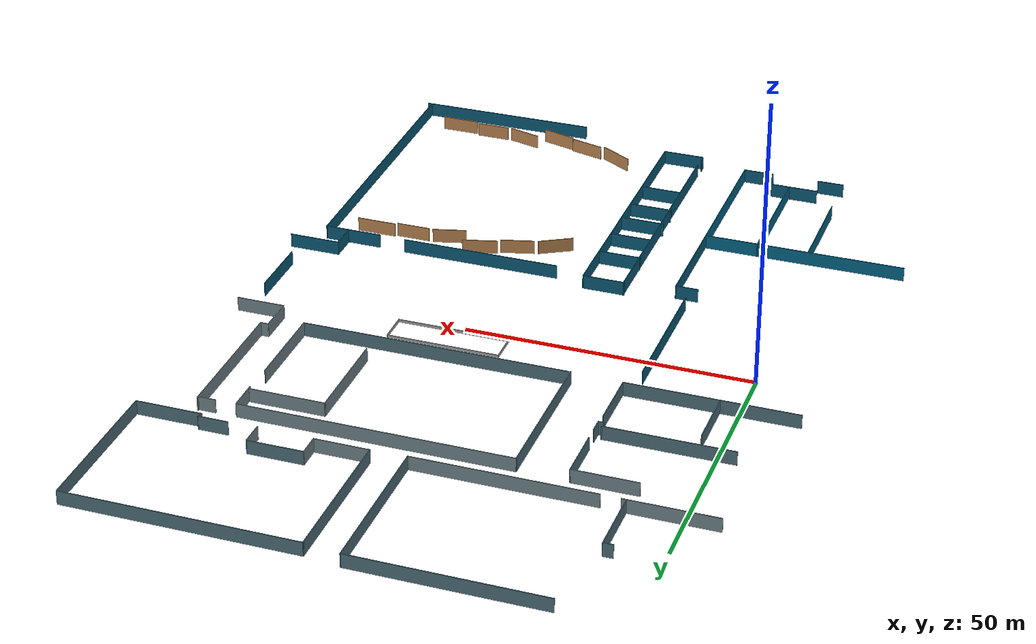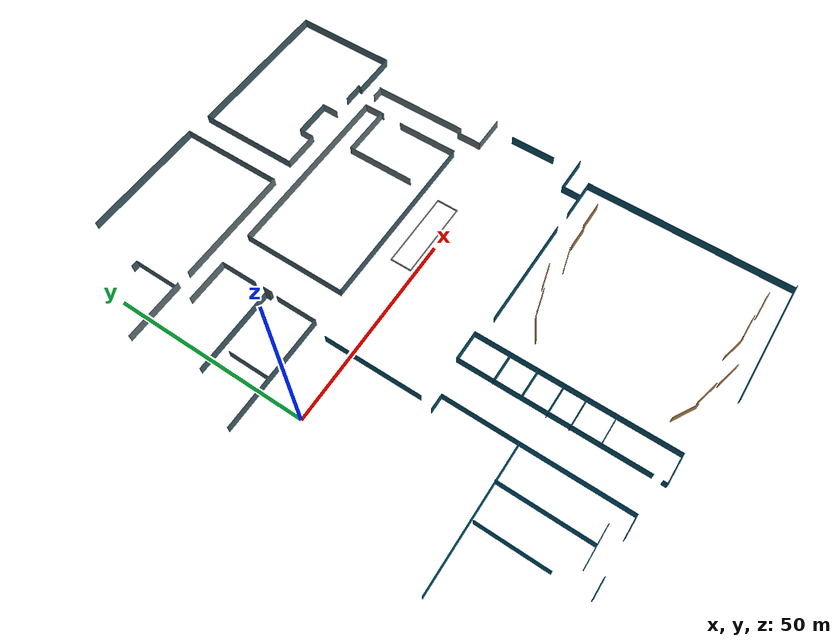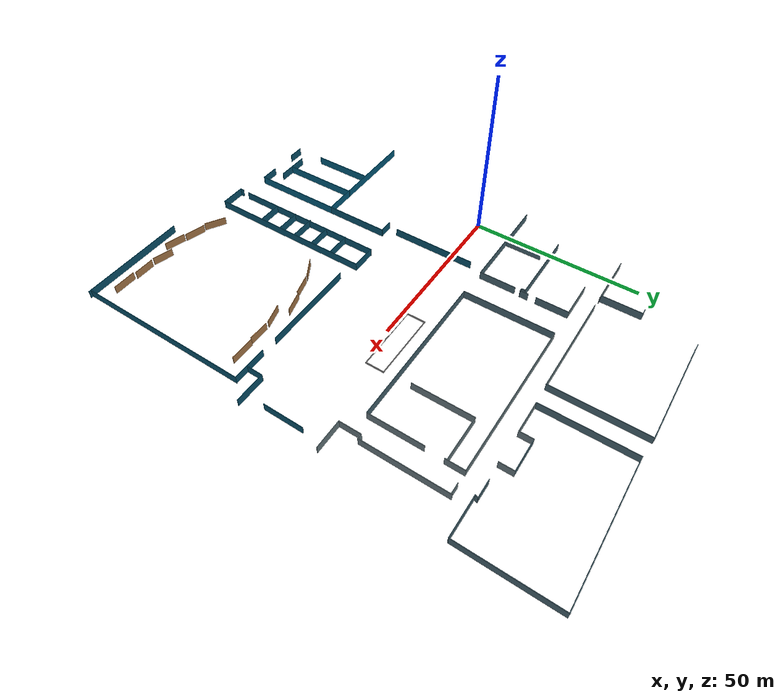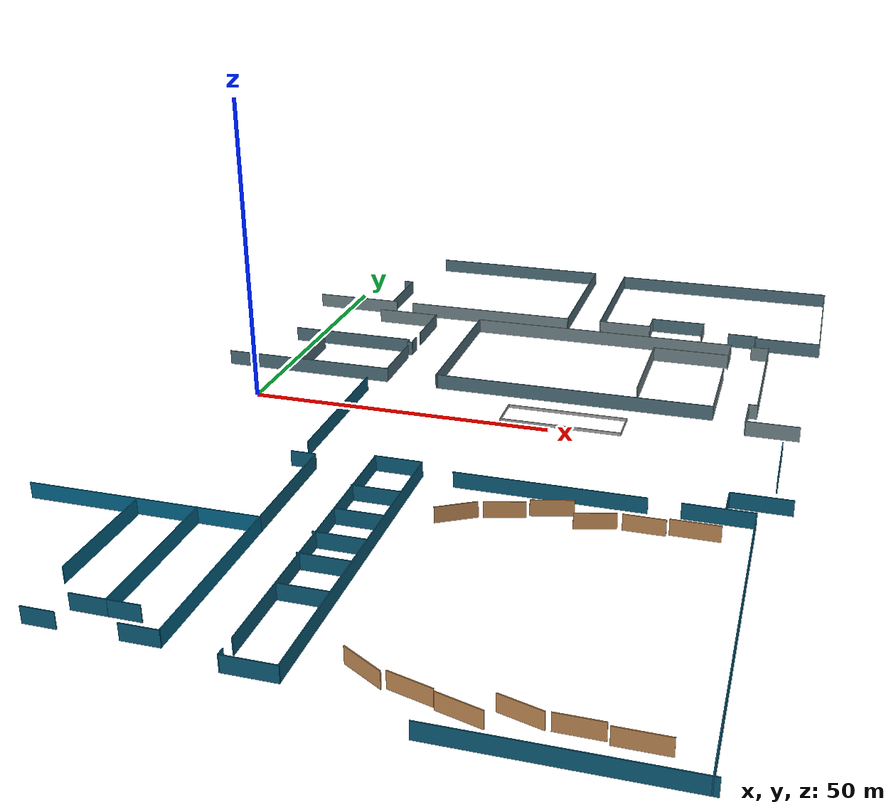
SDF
<sdf version="1.6">
 <model name="eceb">
  <pose>2.10284 -4.41124 0 0 -0 0</pose>
  <link name="Wall_116">
   <collision name="Wall_116_Collision">
    <geometry><box><size>11.25 0.15 2.5</size></box></geometry>
    <pose>0 0 1.25 0 -0 0</pose>
   </collision>
   <visual name="Wall_116_Visual">
    <pose>0 0 1.25 0 -0 0</pose>
    <geometry><box><size>11.25 0.15 2.5</size></box></geometry>
    <material>
     <script><uri>file://media/materials/scripts/gazebo.material</uri><name>Gazebo/Grey</name></script>
     <ambient>0.411765 0.486275 0.509804 1</ambient>
    </material>
    <meta><layer>0</layer></meta>
   </visual>
   <pose>11.784 41.6234 0 0 -0 0</pose>
  </link>
  <link name="Wall_117">
   <collision name="Wall_117_Collision">
    <geometry><box><size>9.5 0.15 2.5</size></box></geometry>
    <pose>0 0 1.25 0 -0 0</pose>
   </collision>
   <visual name="Wall_117_Visual">
    <pose>0 0 1.25 0 -0 0</pose>
    <geometry><box><size>9.5 0.15 2.5</size></box></geometry>
    <material>
     <script><uri>file://media/materials/scripts/gazebo.material</uri><name>Gazebo/Grey</name></script>
     <ambient>0.282353 0.403922 0.447059 1</ambient>
    </material>
    <meta><layer>0</layer></meta>
   </visual>
   <pose>17.334 36.9484 0 0 -0 -1.5708</pose>
  </link>
  <link name="Wall_119">
   <collision name="Wall_119_Collision">
    <geometry><box><size>2.5 0.15 2.5</size></box></geometry>
    <pose>0 0 1.25 0 -0 0</pose>
   </collision>
   <visual name="Wall_119_Visual">
    <pose>0 0 1.25 0 -0 0</pose>
    <geometry><box><size>2.5 0.15 2.5</size></box></geometry>
    <material>
     <script><uri>file://media/materials/scripts/gazebo.material</uri><name>Gazebo/Grey</name></script>
     <ambient>0.282353 0.403922 0.447059 1</ambient>
    </material>
    <meta><layer>0</layer></meta>
   </visual>
   <pose>17.3382 28.6905 0 0 -0 -1.5708</pose>
  </link>
  <link name="Wall_121">
   <collision name="Wall_121_Collision">
    <geometry><box><size>1 0.15 2.5</size></box></geometry>
    <pose>0 0 1.25 0 -0 0</pose>
   </collision>
   <visual name="Wall_121_Visual">
    <pose>0 0 1.25 0 -0 0</pose>
    <geometry><box><size>1 0.15 2.5</size></box></geometry>
    <material>
     <script><uri>file://media/materials/scripts/gazebo.material</uri><name>Gazebo/Grey</name></script>
     <ambient>0.282353 0.403922 0.447059 1</ambient>
    </material>
    <meta><layer>0</layer></meta>
   </visual>
   <pose>16.9132 27.5155 0 0 -0 3.14159</pose>
  </link>
  <link name="Wall_122">
   <collision name="Wall_122_Collision">
    <geometry><box><size>1.25 0.15 2.5</size></box></geometry>
    <pose>0 0 1.25 0 -0 0</pose>
   </collision>
   <visual name="Wall_122_Visual">
    <pose>0 0 1.25 0 -0 0</pose>
    <geometry><box><size>1.25 0.15 2.5</size></box></geometry>
    <material>
     <script><uri>file://media/materials/scripts/gazebo.material</uri><name>Gazebo/Grey</name></script>
     <ambient>0.282353 0.403922 0.447059 1</ambient>
    </material>
    <meta><layer>0</layer></meta>
   </visual>
   <pose>16.4882 28.0655 0 0 -0 1.5708</pose>
  </link>
  <link name="Wall_123">
   <collision name="Wall_123_Collision">
    <geometry><box><size>22 0.15 2.5</size></box></geometry>
    <pose>0 0 1.25 0 -0 0</pose>
   </collision>
   <visual name="Wall_123_Visual">
    <pose>0 0 1.25 0 -0 0</pose>
    <geometry><box><size>22 0.15 2.5</size></box></geometry>
    <material>
     <script><uri>file://media/materials/scripts/gazebo.material</uri><name>Gazebo/Grey</name></script>
     <ambient>0.282353 0.403922 0.447059 1</ambient>
    </material>
    <meta><layer>0</layer></meta>
   </visual>
   <pose>5.5632 28.6155 0 0 -0 3.14159</pose>
  </link>
  <link name="Wall_126">
   <collision name="Wall_126_Collision">
    <geometry><box><size>10.75 0.15 2.5</size></box></geometry>
    <pose>0 0 1.25 0 -0 0</pose>
   </collision>
   <visual name="Wall_126_Visual">
    <pose>0 0 1.25 0 -0 0</pose>
    <geometry><box><size>10.75 0.15 2.5</size></box></geometry>
    <material>
     <script><uri>file://media/materials/scripts/gazebo.material</uri><name>Gazebo/Grey</name></script>
     <ambient>0.282353 0.403922 0.447059 1</ambient>
    </material>
    <meta><layer>0</layer></meta>
   </visual>
   <pose>17.1199 20.5308 0 0 -0 -1.5708</pose>
  </link>
  <link name="Wall_127">
   <collision name="Wall_127_Collision">
    <geometry><box><size>29.5 0.15 2.5</size></box></geometry>
    <pose>0 0 1.25 0 -0 0</pose>
   </collision>
   <visual name="Wall_127_Visual">
    <pose>0 0 1.25 0 -0 0</pose>
    <geometry><box><size>29.5 0.15 2.5</size></box></geometry>
    <material>
     <script><uri>file://media/materials/scripts/gazebo.material</uri><name>Gazebo/Grey</name></script>
     <ambient>0.282353 0.403922 0.447059 1</ambient>
    </material>
    <meta><layer>0</layer></meta>
   </visual>
   <pose>2.44485 15.2308 0 0 -0 3.14159</pose>
  </link>
  <link name="Wall_129">
   <collision name="Wall_129_Collision">
    <geometry><box><size>10.75 0.15 2.5</size></box></geometry>
    <pose>0 0 1.25 0 -0 0</pose>
   </collision>
   <visual name="Wall_129_Visual">
    <pose>0 0 1.25 0 -0 0</pose>
    <geometry><box><size>10.75 0.15 2.5</size></box></geometry>
    <material>
     <script><uri>file://media/materials/scripts/gazebo.material</uri><name>Gazebo/Grey</name></script>
     <ambient>0.282353 0.403922 0.447059 1</ambient>
    </material>
    <meta><layer>0</layer></meta>
   </visual>
   <pose>1.04463 20.6982 0 0 -0 -1.5708</pose>
  </link>
  <link name="Wall_151">
   <collision name="Wall_151_Collision">
    <geometry><box><size>32.09 0.15 2.5</size></box></geometry>
    <pose>0 0 1.25 0 -0 0</pose>
   </collision>
   <visual name="Wall_151_Visual">
    <pose>0 0 1.25 0 -0 0</pose>
    <geometry><box><size>32.09 0.15 2.5</size></box></geometry>
    <material>
     <script><uri>file://media/materials/scripts/gazebo.material</uri><name>Gazebo/Grey</name></script>
     <ambient>0.0313726 0.333333 0.443137 1</ambient>
    </material>
    <meta><layer>0</layer></meta>
   </visual>
   <pose>66.8099 -69.7617 0 0 -0 -3.13376</pose>
  </link>
  <link name="Wall_178">
   <collision name="Wall_178_Collision">
    <geometry><box><size>35.5 0.15 2.5</size></box></geometry>
    <pose>0 0 1.25 0 -0 0</pose>
   </collision>
   <visual name="Wall_178_Visual">
    <pose>0 0 1.25 0 -0 0</pose>
    <geometry><box><size>35.5 0.15 2.5</size></box></geometry>
    <material>
     <script><uri>file://media/materials/scripts/gazebo.material</uri><name>Gazebo/Grey</name></script>
     <ambient>0.00784314 0.372549 0.505882 1</ambient>
    </material>
    <meta><layer>0</layer></meta>
   </visual>
   <pose>0.112491 -36.169 0 0 -0 0</pose>
  </link>
  <link name="Wall_188">
   <collision name="Wall_188_Collision">
    <geometry><box><size>23 0.15 2.5</size></box></geometry>
    <pose>0 0 1.25 0 -0 0</pose>
   </collision>
   <visual name="Wall_188_Visual">
    <pose>0 0 1.25 0 -0 0</pose>
    <geometry><box><size>23 0.15 2.5</size></box></geometry>
    <material>
     <script><uri>file://media/materials/scripts/gazebo.material</uri><name>Gazebo/Grey</name></script>
     <ambient>0.00784314 0.372549 0.505882 1</ambient>
    </material>
    <meta><layer>0</layer></meta>
   </visual>
   <pose>8.45793 -47.4702 0 0 -0 -1.5708</pose>
  </link>
  <link name="Wall_189">
   <collision name="Wall_189_Collision">
    <geometry><box><size>5.25 0.15 2.5</size></box></geometry>
    <pose>0 0 1.25 0 -0 0</pose>
   </collision>
   <visual name="Wall_189_Visual">
    <pose>0 0 1.25 0 -0 0</pose>
    <geometry><box><size>5.25 0.15 2.5</size></box></geometry>
    <material>
     <script><uri>file://media/materials/scripts/gazebo.material</uri><name>Gazebo/Grey</name></script>
     <ambient>0.0313726 0.333333 0.443137 1</ambient>
    </material>
    <meta><layer>0</layer></meta>
   </visual>
   <pose>5.90793 -58.8952 0 0 -0 3.14159</pose>
  </link>
  <link name="Wall_19">
   <collision name="Wall_19_Collision">
    <geometry><box><size>15.75 0.15 2.5</size></box></geometry>
    <pose>0 0 1.25 0 -0 0</pose>
   </collision>
   <visual name="Wall_19_Visual">
    <pose>0 0 1.25 0 -0 0</pose>
    <geometry><box><size>15.75 0.15 2.5</size></box></geometry>
    <material>
     <script><uri>file://media/materials/scripts/gazebo.material</uri><name>Gazebo/Grey</name></script>
     <ambient>0.411765 0.486275 0.509804 1</ambient>
    </material>
    <meta><layer>0</layer></meta>
   </visual>
   <pose>-0.148732 46.5125 0 0 -0 0</pose>
  </link>
  <link name="Wall_191">
   <collision name="Wall_191_Collision">
    <geometry><box><size>4.75 0.15 2.5</size></box></geometry>
    <pose>0 0 1.25 0 -0 0</pose>
   </collision>
   <visual name="Wall_191_Visual">
    <pose>0 0 1.25 0 -0 0</pose>
    <geometry><box><size>4.75 0.15 2.5</size></box></geometry>
    <material>
     <script><uri>file://media/materials/scripts/gazebo.material</uri><name>Gazebo/Grey</name></script>
     <ambient>0.0313726 0.333333 0.443137 1</ambient>
    </material>
    <meta><layer>0</layer></meta>
   </visual>
   <pose>10.7679 -58.8952 0 0 -0 3.14159</pose>
  </link>
  <link name="Wall_193">
   <collision name="Wall_193_Collision">
    <geometry><box><size>4.75 0.15 2.5</size></box></geometry>
    <pose>0 0 1.25 0 -0 0</pose>
   </collision>
   <visual name="Wall_193_Visual">
    <pose>0 0 1.25 0 -0 0</pose>
    <geometry><box><size>4.75 0.15 2.5</size></box></geometry>
    <material>
     <script><uri>file://media/materials/scripts/gazebo.material</uri><name>Gazebo/Grey</name></script>
     <ambient>0.0313726 0.333333 0.443137 1</ambient>
    </material>
    <meta><layer>0</layer></meta>
   </visual>
   <pose>1.65317 -62.8733 0 0 -0 3.14159</pose>
  </link>
  <link name="Wall_199">
   <collision name="Wall_199_Collision">
    <geometry><box><size>17.5 0.15 2.5</size></box></geometry>
    <pose>0 0 1.25 0 -0 0</pose>
   </collision>
   <visual name="Wall_199_Visual">
    <pose>0 0 1.25 0 -0 0</pose>
    <geometry><box><size>17.5 0.15 2.5</size></box></geometry>
    <material>
     <script><uri>file://media/materials/scripts/gazebo.material</uri><name>Gazebo/Grey</name></script>
     <ambient>0.00784314 0.372549 0.505882 1</ambient>
    </material>
    <meta><layer>0</layer></meta>
   </visual>
   <pose>-0.646828 -45.3483 0 0 -0 1.5708</pose>
  </link>
  <link name="Wall_201">
   <collision name="Wall_201_Collision">
    <geometry><box><size>26.75 0.15 2.5</size></box></geometry>
    <pose>0 0 1.25 0 -0 0</pose>
   </collision>
   <visual name="Wall_201_Visual">
    <pose>0 0 1.25 0 -0 0</pose>
    <geometry><box><size>26.75 0.15 2.5</size></box></geometry>
    <material>
     <script><uri>file://media/materials/scripts/gazebo.material</uri><name>Gazebo/Grey</name></script>
     <ambient>0.00784314 0.372549 0.505882 1</ambient>
    </material>
    <meta><layer>0</layer></meta>
   </visual>
   <pose>17.7875 -49.469 0 0 -0 -1.5708</pose>
  </link>
  <link name="Wall_202">
   <collision name="Wall_202_Collision">
    <geometry><box><size>5.5 0.15 2.5</size></box></geometry>
    <pose>0 0 1.25 0 -0 0</pose>
   </collision>
   <visual name="Wall_202_Visual">
    <pose>0 0 1.25 0 -0 0</pose>
    <geometry><box><size>5.5 0.15 2.5</size></box></geometry>
    <material>
     <script><uri>file://media/materials/scripts/gazebo.material</uri><name>Gazebo/Grey</name></script>
     <ambient>0.0313726 0.333333 0.443137 1</ambient>
    </material>
    <meta><layer>0</layer></meta>
   </visual>
   <pose>15.1125 -62.769 0 0 -0 3.14159</pose>
  </link>
  <link name="Wall_22">
   <collision name="Wall_22_Collision">
    <geometry><box><size>31 0.15 2.5</size></box></geometry>
    <pose>0 0 1.25 0 -0 0</pose>
   </collision>
   <visual name="Wall_22_Visual">
    <pose>0 0 1.25 0 -0 0</pose>
    <geometry><box><size>31 0.15 2.5</size></box></geometry>
    <material>
     <script><uri>file://media/materials/scripts/gazebo.material</uri><name>Gazebo/Grey</name></script>
     <ambient>0.411765 0.486275 0.509804 1</ambient>
    </material>
    <meta><layer>0</layer></meta>
   </visual>
   <pose>26.4606 46.4787 0 0 -0 0</pose>
  </link>
  <link name="Wall_222">
   <collision name="Wall_222_Collision">
    <geometry><box><size>7.47055 0.15 2.5</size></box></geometry>
    <pose>0 0 1.25 0 -0 0</pose>
   </collision>
   <visual name="Wall_222_Visual">
    <pose>0 0 1.25 0 -0 0</pose>
    <geometry><box><size>7.47055 0.15 2.5</size></box></geometry>
    <material>
     <script><uri>file://media/materials/scripts/gazebo.material</uri><name>Gazebo/Grey</name></script>
     <ambient>0.0313726 0.333333 0.443137 1</ambient>
    </material>
    <meta><layer>0</layer></meta>
   </visual>
   <pose>30.1326 -15.4643 0 0 -0 0</pose>
  </link>
  <link name="Wall_223">
   <collision name="Wall_223_Collision">
    <geometry><box><size>49.75 0.15 2.5</size></box></geometry>
    <pose>0 0 1.25 0 -0 0</pose>
   </collision>
   <visual name="Wall_223_Visual">
    <pose>0 0 1.25 0 -0 0</pose>
    <geometry><box><size>49.75 0.15 2.5</size></box></geometry>
    <material>
     <script><uri>file://media/materials/scripts/gazebo.material</uri><name>Gazebo/Grey</name></script>
     <ambient>0.0313726 0.333333 0.443137 1</ambient>
    </material>
    <meta><layer>0</layer></meta>
   </visual>
   <pose>33.8027 -40.2643 0 0 -0 -1.5708</pose>
  </link>
  <link name="Wall_225">
   <collision name="Wall_225_Collision">
    <geometry><box><size>7.5 0.15 2.5</size></box></geometry>
    <pose>0 0 1.25 0 -0 0</pose>
   </collision>
   <visual name="Wall_225_Visual">
    <pose>0 0 1.25 0 -0 0</pose>
    <geometry><box><size>7.5 0.15 2.5</size></box></geometry>
    <material>
     <script><uri>file://media/materials/scripts/gazebo.material</uri><name>Gazebo/Grey</name></script>
     <ambient>0.0313726 0.333333 0.443137 1</ambient>
    </material>
    <meta><layer>0</layer></meta>
   </visual>
   <pose>30.1277 -65.0643 0 0 -0 3.14159</pose>
  </link>
  <link name="Wall_226">
   <collision name="Wall_226_Collision">
    <geometry><box><size>1.25 0.15 2.5</size></box></geometry>
    <pose>0 0 1.25 0 -0 0</pose>
   </collision>
   <visual name="Wall_226_Visual">
    <pose>0 0 1.25 0 -0 0</pose>
    <geometry><box><size>1.25 0.15 2.5</size></box></geometry>
    <material>
     <script><uri>file://media/materials/scripts/gazebo.material</uri><name>Gazebo/Grey</name></script>
     <ambient>0.0313726 0.333333 0.443137 1</ambient>
    </material>
    <meta><layer>0</layer></meta>
   </visual>
   <pose>26.4527 -64.5143 0 0 -0 1.5708</pose>
  </link>
  <link name="Wall_228">
   <collision name="Wall_228_Collision">
    <geometry><box><size>46.5 0.15 2.5</size></box></geometry>
    <pose>0 0 1.25 0 -0 0</pose>
   </collision>
   <visual name="Wall_228_Visual">
    <pose>0 0 1.25 0 -0 0</pose>
    <geometry><box><size>46.5 0.15 2.5</size></box></geometry>
    <material>
     <script><uri>file://media/materials/scripts/gazebo.material</uri><name>Gazebo/Grey</name></script>
     <ambient>0.0313726 0.333333 0.443137 1</ambient>
    </material>
    <meta><layer>0</layer></meta>
   </visual>
   <pose>26.5588 -38.6105 0 0 -0 1.5708</pose>
  </link>
  <link name="Wall_230">
   <collision name="Wall_230_Collision">
    <geometry><box><size>7 0.15 2.5</size></box></geometry>
    <pose>0 0 1.25 0 -0 0</pose>
   </collision>
   <visual name="Wall_230_Visual">
    <pose>0 0 1.25 0 -0 0</pose>
    <geometry><box><size>7 0.15 2.5</size></box></geometry>
    <material>
     <script><uri>file://media/materials/scripts/gazebo.material</uri><name>Gazebo/Grey</name></script>
     <ambient>0.0313726 0.333333 0.443137 1</ambient>
    </material>
    <meta><layer>0</layer></meta>
   </visual>
   <pose>30.1219 -50.1726 0 0 -0 0</pose>
  </link>
  <link name="Wall_232">
   <collision name="Wall_232_Collision">
    <geometry><box><size>7.5 0.15 2.5</size></box></geometry>
    <pose>0 0 1.25 0 -0 0</pose>
   </collision>
   <visual name="Wall_232_Visual">
    <pose>0 0 1.25 0 -0 0</pose>
    <geometry><box><size>7.5 0.15 2.5</size></box></geometry>
    <material>
     <script><uri>file://media/materials/scripts/gazebo.material</uri><name>Gazebo/Grey</name></script>
     <ambient>0.0313726 0.333333 0.443137 1</ambient>
    </material>
    <meta><layer>0</layer></meta>
   </visual>
   <pose>29.9575 -43.1268 0 0 -0 0</pose>
  </link>
  <link name="Wall_234">
   <collision name="Wall_234_Collision">
    <geometry><box><size>7.75 0.15 2.5</size></box></geometry>
    <pose>0 0 1.25 0 -0 0</pose>
   </collision>
   <visual name="Wall_234_Visual">
    <pose>0 0 1.25 0 -0 0</pose>
    <geometry><box><size>7.75 0.15 2.5</size></box></geometry>
    <material>
     <script><uri>file://media/materials/scripts/gazebo.material</uri><name>Gazebo/Grey</name></script>
     <ambient>0.0313726 0.333333 0.443137 1</ambient>
    </material>
    <meta><layer>0</layer></meta>
   </visual>
   <pose>29.9443 -37.7389 0 0 -0 0</pose>
  </link>
  <link name="Wall_236">
   <collision name="Wall_236_Collision">
    <geometry><box><size>7.25 0.15 2.5</size></box></geometry>
    <pose>0 0 1.25 0 -0 0</pose>
   </collision>
   <visual name="Wall_236_Visual">
    <pose>0 0 1.25 0 -0 0</pose>
    <geometry><box><size>7.25 0.15 2.5</size></box></geometry>
    <material>
     <script><uri>file://media/materials/scripts/gazebo.material</uri><name>Gazebo/Grey</name></script>
     <ambient>0.0313726 0.333333 0.443137 1</ambient>
    </material>
    <meta><layer>0</layer></meta>
   </visual>
   <pose>30.1088 -31.384 0 0 -0 0</pose>
  </link>
  <link name="Wall_238">
   <collision name="Wall_238_Collision">
    <geometry><box><size>7.5 0.15 2.5</size></box></geometry>
    <pose>0 0 1.25 0 -0 0</pose>
   </collision>
   <visual name="Wall_238_Visual">
    <pose>0 0 1.25 0 -0 0</pose>
    <geometry><box><size>7.5 0.15 2.5</size></box></geometry>
    <material>
     <script><uri>file://media/materials/scripts/gazebo.material</uri><name>Gazebo/Grey</name></script>
     <ambient>0.0313726 0.333333 0.443137 1</ambient>
    </material>
    <meta><layer>0</layer></meta>
   </visual>
   <pose>30.0956 -24.6146 0 0 -0 0</pose>
  </link>
  <link name="Wall_240">
   <collision name="Wall_240_Collision">
    <geometry><box><size>28.25 0.15 2.5</size></box></geometry>
    <pose>0 0 1.25 0 -0 0</pose>
   </collision>
   <visual name="Wall_240_Visual">
    <pose>0 0 1.25 0 -0 0</pose>
    <geometry><box><size>28.25 0.15 2.5</size></box></geometry>
    <material>
     <script><uri>file://media/materials/scripts/gazebo.material</uri><name>Gazebo/Grey</name></script>
     <ambient>0.0313726 0.333333 0.443137 1</ambient>
    </material>
    <meta><layer>0</layer></meta>
   </visual>
   <pose>53.1805 -17.1544 0 0 -0 0</pose>
  </link>
  <link name="Wall_242">
   <collision name="Wall_242_Collision">
    <geometry><box><size>10.25 0.15 2.5</size></box></geometry>
    <pose>0 0 1.25 0 -0 0</pose>
   </collision>
   <visual name="Wall_242_Visual">
    <pose>0 0 1.25 0 -0 0</pose>
    <geometry><box><size>10.25 0.15 2.5</size></box></geometry>
    <material>
     <script><uri>file://media/materials/scripts/gazebo.material</uri><name>Gazebo/Grey</name></script>
     <ambient>0.0313726 0.333333 0.443137 1</ambient>
    </material>
    <meta><layer>0</layer></meta>
   </visual>
   <pose>77.0605 -17.2926 0 0 -0 0</pose>
  </link>
  <link name="Wall_243">
   <collision name="Wall_243_Collision">
    <geometry><box><size>52.5 0.15 2.5</size></box></geometry>
    <pose>0 0 1.25 0 -0 0</pose>
   </collision>
   <visual name="Wall_243_Visual">
    <pose>0 0 1.25 0 -0 0</pose>
    <geometry><box><size>52.5 0.15 2.5</size></box></geometry>
    <material>
     <script><uri>file://media/materials/scripts/gazebo.material</uri><name>Gazebo/Grey</name></script>
     <ambient>0.0313726 0.333333 0.443137 1</ambient>
    </material>
    <meta><layer>0</layer></meta>
   </visual>
   <pose>82.1106 -43.4676 0 0 -0 -1.5708</pose>
  </link>
  <link name="Wall_245">
   <collision name="Wall_245_Collision">
    <geometry><box><size>6.5 0.15 2.5</size></box></geometry>
    <pose>0 0 1.25 0 -0 0</pose>
   </collision>
   <visual name="Wall_245_Visual">
    <pose>0 0 1.25 0 -0 0</pose>
    <geometry><box><size>6.5 0.15 2.5</size></box></geometry>
    <material>
     <script><uri>file://media/materials/scripts/gazebo.material</uri><name>Gazebo/Wood</name></script>
     <ambient>1 1 1 1</ambient>
    </material>
    <meta><layer>0</layer></meta>
   </visual>
   <pose>42.2296 -61.3749 0 0 -0 -0.523599</pose>
  </link>
  <link name="Wall_247">
   <collision name="Wall_247_Collision">
    <geometry><box><size>6.25 0.15 2.5</size></box></geometry>
    <pose>0 0 1.25 0 -0 0</pose>
   </collision>
   <visual name="Wall_247_Visual">
    <pose>0 0 1.25 0 -0 0</pose>
    <geometry><box><size>6.25 0.15 2.5</size></box></geometry>
    <material>
     <script><uri>file://media/materials/scripts/gazebo.material</uri><name>Gazebo/Wood</name></script>
     <ambient>1 1 1 1</ambient>
    </material>
    <meta><layer>0</layer></meta>
   </visual>
   <pose>48.5917 -63.4828 0 0 -0 -0.261799</pose>
  </link>
  <link name="Wall_249">
   <collision name="Wall_249_Collision">
    <geometry><box><size>6.25 0.15 2.5</size></box></geometry>
    <pose>0 0 1.25 0 -0 0</pose>
   </collision>
   <visual name="Wall_249_Visual">
    <pose>0 0 1.25 0 -0 0</pose>
    <geometry><box><size>6.25 0.15 2.5</size></box></geometry>
    <material>
     <script><uri>file://media/materials/scripts/gazebo.material</uri><name>Gazebo/Wood</name></script>
     <ambient>1 1 1 1</ambient>
    </material>
    <meta><layer>0</layer></meta>
   </visual>
   <pose>54.7965 -65.4857 0 0 -0 -0.261799</pose>
  </link>
  <link name="Wall_251">
   <collision name="Wall_251_Collision">
    <geometry><box><size>6 0.15 2.5</size></box></geometry>
    <pose>0 0 1.25 0 -0 0</pose>
   </collision>
   <visual name="Wall_251_Visual">
    <pose>0 0 1.25 0 -0 0</pose>
    <geometry><box><size>6 0.15 2.5</size></box></geometry>
    <material>
     <script><uri>file://media/materials/scripts/gazebo.material</uri><name>Gazebo/Wood</name></script>
     <ambient>1 1 1 1</ambient>
    </material>
    <meta><layer>0</layer></meta>
   </visual>
   <pose>61.1555 -63.9217 0 0 -0 -0.261799</pose>
  </link>
  <link name="Wall_253">
   <collision name="Wall_253_Collision">
    <geometry><box><size>6 0.15 2.5</size></box></geometry>
    <pose>0 0 1.25 0 -0 0</pose>
   </collision>
   <visual name="Wall_253_Visual">
    <pose>0 0 1.25 0 -0 0</pose>
    <geometry><box><size>6 0.15 2.5</size></box></geometry>
    <material>
     <script><uri>file://media/materials/scripts/gazebo.material</uri><name>Gazebo/Wood</name></script>
     <ambient>1 1 1 1</ambient>
    </material>
    <meta><layer>0</layer></meta>
   </visual>
   <pose>67.6957 -64.6177 0 0 -0 0</pose>
  </link>
  <link name="Wall_255">
   <collision name="Wall_255_Collision">
    <geometry><box><size>6.75 0.15 2.5</size></box></geometry>
    <pose>0 0 1.25 0 -0 0</pose>
   </collision>
   <visual name="Wall_255_Visual">
    <pose>0 0 1.25 0 -0 0</pose>
    <geometry><box><size>6.75 0.15 2.5</size></box></geometry>
    <material>
     <script><uri>file://media/materials/scripts/gazebo.material</uri><name>Gazebo/Wood</name></script>
     <ambient>1 1 1 1</ambient>
    </material>
    <meta><layer>0</layer></meta>
   </visual>
   <pose>74.4326 -65.089 0 0 -0 0</pose>
  </link>
  <link name="Wall_257">
   <collision name="Wall_257_Collision">
    <geometry><box><size>6.25 0.15 2.5</size></box></geometry>
    <pose>0 0 1.25 0 -0 0</pose>
   </collision>
   <visual name="Wall_257_Visual">
    <pose>0 0 1.25 0 -0 0</pose>
    <geometry><box><size>6.25 0.15 2.5</size></box></geometry>
    <material>
     <script><uri>file://media/materials/scripts/gazebo.material</uri><name>Gazebo/Wood</name></script>
     <ambient>1 1 1 1</ambient>
    </material>
    <meta><layer>0</layer></meta>
   </visual>
   <pose>42.2392 -25.9029 0 0 -0 0.523599</pose>
  </link>
  <link name="Wall_259">
   <collision name="Wall_259_Collision">
    <geometry><box><size>6 0.15 2.5</size></box></geometry>
    <pose>0 0 1.25 0 -0 0</pose>
   </collision>
   <visual name="Wall_259_Visual">
    <pose>0 0 1.25 0 -0 0</pose>
    <geometry><box><size>6 0.15 2.5</size></box></geometry>
    <material>
     <script><uri>file://media/materials/scripts/gazebo.material</uri><name>Gazebo/Wood</name></script>
     <ambient>1 1 1 1</ambient>
    </material>
    <meta><layer>0</layer></meta>
   </visual>
   <pose>48.4709 -23.4113 0 0 -0 0.261799</pose>
  </link>
  <link name="Wall_26">
   <collision name="Wall_26_Collision">
    <geometry><box><size>27 0.15 2.5</size></box></geometry>
    <pose>0 0 1.25 0 -0 0</pose>
   </collision>
   <visual name="Wall_26_Visual">
    <pose>0 0 1.25 0 -0 0</pose>
    <geometry><box><size>27 0.15 2.5</size></box></geometry>
    <material>
     <script><uri>file://media/materials/scripts/gazebo.material</uri><name>Gazebo/Grey</name></script>
     <ambient>0.282353 0.403922 0.447059 1</ambient>
    </material>
    <meta><layer>0</layer></meta>
   </visual>
   <pose>41.8856 59.9037 0 0 -0 1.5708</pose>
  </link>
  <link name="Wall_261">
   <collision name="Wall_261_Collision">
    <geometry><box><size>6.25 0.15 2.5</size></box></geometry>
    <pose>0 0 1.25 0 -0 0</pose>
   </collision>
   <visual name="Wall_261_Visual">
    <pose>0 0 1.25 0 -0 0</pose>
    <geometry><box><size>6.25 0.15 2.5</size></box></geometry>
    <material>
     <script><uri>file://media/materials/scripts/gazebo.material</uri><name>Gazebo/Wood</name></script>
     <ambient>1 1 1 1</ambient>
    </material>
    <meta><layer>0</layer></meta>
   </visual>
   <pose>54.6787 -21.2583 0 0 -0 0.261799</pose>
  </link>
  <link name="Wall_263">
   <collision name="Wall_263_Collision">
    <geometry><box><size>6 0.15 2.5</size></box></geometry>
    <pose>0 0 1.25 0 -0 0</pose>
   </collision>
   <visual name="Wall_263_Visual">
    <pose>0 0 1.25 0 -0 0</pose>
    <geometry><box><size>6 0.15 2.5</size></box></geometry>
    <material>
     <script><uri>file://media/materials/scripts/gazebo.material</uri><name>Gazebo/Wood</name></script>
     <ambient>1 1 1 1</ambient>
    </material>
    <meta><layer>0</layer></meta>
   </visual>
   <pose>61.077 -23.0971 0 0 -0 0.261799</pose>
  </link>
  <link name="Wall_265">
   <collision name="Wall_265_Collision">
    <geometry><box><size>6 0.15 2.5</size></box></geometry>
    <pose>0 0 1.25 0 -0 0</pose>
   </collision>
   <visual name="Wall_265_Visual">
    <pose>0 0 1.25 0 -0 0</pose>
    <geometry><box><size>6 0.15 2.5</size></box></geometry>
    <material>
     <script><uri>file://media/materials/scripts/gazebo.material</uri><name>Gazebo/Wood</name></script>
     <ambient>1 1 1 1</ambient>
    </material>
    <meta><layer>0</layer></meta>
   </visual>
   <pose>67.6564 -22.3619 0 0 -0 0</pose>
  </link>
  <link name="Wall_267">
   <collision name="Wall_267_Collision">
    <geometry><box><size>7 0.15 2.5</size></box></geometry>
    <pose>0 0 1.25 0 -0 0</pose>
   </collision>
   <visual name="Wall_267_Visual">
    <pose>0 0 1.25 0 -0 0</pose>
    <geometry><box><size>7 0.15 2.5</size></box></geometry>
    <material>
     <script><uri>file://media/materials/scripts/gazebo.material</uri><name>Gazebo/Wood</name></script>
     <ambient>1 1 1 1</ambient>
    </material>
    <meta><layer>0</layer></meta>
   </visual>
   <pose>74.4791 -21.9692 0 0 -0 0</pose>
  </link>
  <link name="Wall_269">
   <collision name="Wall_269_Collision">
    <geometry><box><size>19 0.15 2.5</size></box></geometry>
    <pose>0 0 1.25 0 -0 0</pose>
   </collision>
   <visual name="Wall_269_Visual">
    <pose>0 0 1.25 0 -0 0</pose>
    <geometry><box><size>19 0.15 2.5</size></box></geometry>
    <material>
     <script><uri>file://media/materials/scripts/gazebo.material</uri><name>Gazebo/Grey</name></script>
     <ambient>0.0313726 0.333333 0.443137 1</ambient>
    </material>
    <meta><layer>0</layer></meta>
   </visual>
   <pose>17.7875 -26.744 0 0 -0 1.5708</pose>
  </link>
  <link name="Wall_27">
   <collision name="Wall_27_Collision">
    <geometry><box><size>32.75 0.15 2.5</size></box></geometry>
    <pose>0 0 1.25 0 -0 0</pose>
   </collision>
   <visual name="Wall_27_Visual">
    <pose>0 0 1.25 0 -0 0</pose>
    <geometry><box><size>32.75 0.15 2.5</size></box></geometry>
    <material>
     <script><uri>file://media/materials/scripts/gazebo.material</uri><name>Gazebo/Grey</name></script>
     <ambient>0.282353 0.403922 0.447059 1</ambient>
    </material>
    <meta><layer>0</layer></meta>
   </visual>
   <pose>25.5856 73.3287 0 0 -0 3.14159</pose>
  </link>
  <link name="Wall_270">
   <collision name="Wall_270_Collision">
    <geometry><box><size>4 0.15 2.5</size></box></geometry>
    <pose>0 0 1.25 0 -0 0</pose>
   </collision>
   <visual name="Wall_270_Visual">
    <pose>0 0 1.25 0 -0 0</pose>
    <geometry><box><size>4 0.15 2.5</size></box></geometry>
    <material>
     <script><uri>file://media/materials/scripts/gazebo.material</uri><name>Gazebo/Grey</name></script>
     <ambient>0.0313726 0.333333 0.443137 1</ambient>
    </material>
    <meta><layer>0</layer></meta>
   </visual>
   <pose>15.8625 -17.319 0 0 -0 3.14159</pose>
  </link>
  <link name="Wall_272">
   <collision name="Wall_272_Collision">
    <geometry><box><size>25 0.15 2.5</size></box></geometry>
    <pose>0 0 1.25 0 -0 0</pose>
   </collision>
   <visual name="Wall_272_Visual">
    <pose>0 0 1.25 0 -0 0</pose>
    <geometry><box><size>25 0.15 2.5</size></box></geometry>
    <material>
     <script><uri>file://media/materials/scripts/gazebo.material</uri><name>Gazebo/Grey</name></script>
     <ambient>0.0313726 0.333333 0.443137 1</ambient>
    </material>
    <meta><layer>0</layer></meta>
   </visual>
   <pose>15.1197 -1.47225 0 0 -0 1.5708</pose>
  </link>
  <link name="Wall_274">
   <collision name="Wall_274_Collision">
    <geometry><box><size>5.5 0.15 0.5</size></box></geometry>
    <pose>0 0 0.25 0 -0 0</pose>
   </collision>
   <visual name="Wall_274_Visual">
    <pose>0 0 0.25 0 -0 0</pose>
    <geometry><box><size>5.5 0.15 0.5</size></box></geometry>
    <material>
     <script><uri>file://media/materials/scripts/gazebo.material</uri><name>Gazebo/Grey</name></script>
     <ambient>1 1 1 1</ambient>
    </material>
    <meta><layer>0</layer></meta>
   </visual>
   <pose>39.8532 8.26624 0 0 -0 -1.5708</pose>
  </link>
  <link name="Wall_275">
   <collision name="Wall_275_Collision">
    <geometry><box><size>19.75 0.15 0.5</size></box></geometry>
    <pose>0 0 0.25 0 -0 0</pose>
   </collision>
   <visual name="Wall_275_Visual">
    <pose>0 0 0.25 0 -0 0</pose>
    <geometry><box><size>19.75 0.15 0.5</size></box></geometry>
    <material>
     <script><uri>file://media/materials/scripts/gazebo.material</uri><name>Gazebo/Grey</name></script>
     <ambient>1 1 1 1</ambient>
    </material>
    <meta><layer>0</layer></meta>
   </visual>
   <pose>49.6532 5.59124 0 0 -0 0</pose>
  </link>
  <link name="Wall_276">
   <collision name="Wall_276_Collision">
    <geometry><box><size>5.5 0.15 0.5</size></box></geometry>
    <pose>0 0 0.25 0 -0 0</pose>
   </collision>
   <visual name="Wall_276_Visual">
    <pose>0 0 0.25 0 -0 0</pose>
    <geometry><box><size>5.5 0.15 0.5</size></box></geometry>
    <material>
     <script><uri>file://media/materials/scripts/gazebo.material</uri><name>Gazebo/Grey</name></script>
     <ambient>1 1 1 1</ambient>
    </material>
    <meta><layer>0</layer></meta>
   </visual>
   <pose>59.4532 8.26624 0 0 -0 1.5708</pose>
  </link>
  <link name="Wall_277">
   <collision name="Wall_277_Collision">
    <geometry><box><size>19.75 0.15 0.5</size></box></geometry>
    <pose>0 0 0.25 0 -0 0</pose>
   </collision>
   <visual name="Wall_277_Visual">
    <pose>0 0 0.25 0 -0 0</pose>
    <geometry><box><size>19.75 0.15 0.5</size></box></geometry>
    <material>
     <script><uri>file://media/materials/scripts/gazebo.material</uri><name>Gazebo/Grey</name></script>
     <ambient>1 1 1 1</ambient>
    </material>
    <meta><layer>0</layer></meta>
   </visual>
   <pose>49.6532 10.9412 0 0 -0 3.14159</pose>
  </link>
  <link name="Wall_279">
   <collision name="Wall_279_Collision">
    <geometry><box><size>46.5 0.15 2.5</size></box></geometry>
    <pose>0 0 1.25 0 -0 0</pose>
   </collision>
   <visual name="Wall_279_Visual">
    <pose>0 0 1.25 0 -0 0</pose>
    <geometry><box><size>46.5 0.15 2.5</size></box></geometry>
    <material>
     <script><uri>file://media/materials/scripts/gazebo.material</uri><name>Gazebo/Grey</name></script>
     <ambient>0.282353 0.403922 0.447059 1</ambient>
    </material>
    <meta><layer>0</layer></meta>
   </visual>
   <pose>49.4792 15.0054 0 0 -0 0</pose>
  </link>
  <link name="Wall_280">
   <collision name="Wall_280_Collision">
    <geometry><box><size>16 0.15 2.5</size></box></geometry>
    <pose>0 0 1.25 0 -0 0</pose>
   </collision>
   <visual name="Wall_280_Visual">
    <pose>0 0 1.25 0 -0 0</pose>
    <geometry><box><size>16 0.15 2.5</size></box></geometry>
    <material>
     <script><uri>file://media/materials/scripts/gazebo.material</uri><name>Gazebo/Grey</name></script>
     <ambient>0.411765 0.486275 0.509804 1</ambient>
    </material>
    <meta><layer>0</layer></meta>
   </visual>
   <pose>72.6542 22.9304 0 0 -0 1.5708</pose>
  </link>
  <link name="Wall_282">
   <collision name="Wall_282_Collision">
    <geometry><box><size>26.75 0.15 2.5</size></box></geometry>
    <pose>0 0 1.25 0 -0 0</pose>
   </collision>
   <visual name="Wall_282_Visual">
    <pose>0 0 1.25 0 -0 0</pose>
    <geometry><box><size>26.75 0.15 2.5</size></box></geometry>
    <material>
     <script><uri>file://media/materials/scripts/gazebo.material</uri><name>Gazebo/Grey</name></script>
     <ambient>0.282353 0.403922 0.447059 1</ambient>
    </material>
    <meta><layer>0</layer></meta>
   </visual>
   <pose>26.0332 28.2606 0 0 -0 -1.5708</pose>
  </link>
  <link name="Wall_284">
   <collision name="Wall_284_Collision">
    <geometry><box><size>47 0.15 2.5</size></box></geometry>
    <pose>0 0 1.25 0 -0 0</pose>
   </collision>
   <visual name="Wall_284_Visual">
    <pose>0 0 1.25 0 -0 0</pose>
    <geometry><box><size>47 0.15 2.5</size></box></geometry>
    <material>
     <script><uri>file://media/materials/scripts/gazebo.material</uri><name>Gazebo/Grey</name></script>
     <ambient>0.411765 0.486275 0.509804 1</ambient>
    </material>
    <meta><layer>0</layer></meta>
   </visual>
   <pose>49.4582 41.5606 0 0 -0 0</pose>
  </link>
  <link name="Wall_285">
   <collision name="Wall_285_Collision">
    <geometry><box><size>5.5 0.15 2.5</size></box></geometry>
    <pose>0 0 1.25 0 -0 0</pose>
   </collision>
   <visual name="Wall_285_Visual">
    <pose>0 0 1.25 0 -0 0</pose>
    <geometry><box><size>5.5 0.15 2.5</size></box></geometry>
    <material>
     <script><uri>file://media/materials/scripts/gazebo.material</uri><name>Gazebo/Grey</name></script>
     <ambient>0.411765 0.486275 0.509804 1</ambient>
    </material>
    <meta><layer>0</layer></meta>
   </visual>
   <pose>72.8832 38.8856 0 0 -0 -1.5708</pose>
  </link>
  <link name="Wall_287">
   <collision name="Wall_287_Collision">
    <geometry><box><size>17.75 0.15 2.5</size></box></geometry>
    <pose>0 0 1.25 0 -0 0</pose>
   </collision>
   <visual name="Wall_287_Visual">
    <pose>0 0 1.25 0 -0 0</pose>
    <geometry><box><size>17.75 0.15 2.5</size></box></geometry>
    <material>
     <script><uri>file://media/materials/scripts/gazebo.material</uri><name>Gazebo/Grey</name></script>
     <ambient>0.411765 0.486275 0.509804 1</ambient>
    </material>
    <meta><layer>0</layer></meta>
   </visual>
   <pose>59.724 27.9734 0 0 -0 -1.5708</pose>
  </link>
  <link name="Wall_289">
   <collision name="Wall_289_Collision">
    <geometry><box><size>13.25 0.15 2.5</size></box></geometry>
    <pose>0 0 1.25 0 -0 0</pose>
   </collision>
   <visual name="Wall_289_Visual">
    <pose>0 0 1.25 0 -0 0</pose>
    <geometry><box><size>13.25 0.15 2.5</size></box></geometry>
    <material>
     <script><uri>file://media/materials/scripts/gazebo.material</uri><name>Gazebo/Grey</name></script>
     <ambient>0.411765 0.486275 0.509804 1</ambient>
    </material>
    <meta><layer>0</layer></meta>
   </visual>
   <pose>66.274 36.7734 0 0 -0 0</pose>
  </link>
  <link name="Wall_291">
   <collision name="Wall_291_Collision">
    <geometry><box><size>4.75 0.15 2.5</size></box></geometry>
    <pose>0 0 1.25 0 -0 0</pose>
   </collision>
   <visual name="Wall_291_Visual">
    <pose>0 0 1.25 0 -0 0</pose>
    <geometry><box><size>4.75 0.15 2.5</size></box></geometry>
    <material>
     <script><uri>file://media/materials/scripts/gazebo.material</uri><name>Gazebo/Grey</name></script>
     <ambient>0.0313726 0.333333 0.443137 1</ambient>
    </material>
    <meta><layer>0</layer></meta>
   </visual>
   <pose>77.9694 -14.7596 0 0 -0 1.5708</pose>
  </link>
  <link name="Wall_292">
   <collision name="Wall_292_Collision">
    <geometry><box><size>9 0.15 2.5</size></box></geometry>
    <pose>0 0 1.25 0 -0 0</pose>
   </collision>
   <visual name="Wall_292_Visual">
    <pose>0 0 1.25 0 -0 0</pose>
    <geometry><box><size>9 0.15 2.5</size></box></geometry>
    <material>
     <script><uri>file://media/materials/scripts/gazebo.material</uri><name>Gazebo/Grey</name></script>
     <ambient>0.0313726 0.333333 0.443137 1</ambient>
    </material>
    <meta><layer>0</layer></meta>
   </visual>
   <pose>82.3944 -12.4596 0 0 -0 0</pose>
  </link>
  <link name="Wall_294">
   <collision name="Wall_294_Collision">
    <geometry><box><size>11.75 0.15 2.5</size></box></geometry>
    <pose>0 0 1.25 0 -0 0</pose>
   </collision>
   <visual name="Wall_294_Visual">
    <pose>0 0 1.25 0 -0 0</pose>
    <geometry><box><size>11.75 0.15 2.5</size></box></geometry>
    <material>
     <script><uri>file://media/materials/scripts/gazebo.material</uri><name>Gazebo/Grey</name></script>
     <ambient>0.0313726 0.333333 0.443137 1</ambient>
    </material>
    <meta><layer>0</layer></meta>
   </visual>
   <pose>84.2017 -0.730236 0 0 -0 -1.5708</pose>
  </link>
  <link name="Wall_296">
   <collision name="Wall_296_Collision">
    <geometry><box><size>8.5 0.15 2.5</size></box></geometry>
    <pose>0 0 1.25 0 -0 0</pose>
   </collision>
   <visual name="Wall_296_Visual">
    <pose>0 0 1.25 0 -0 0</pose>
    <geometry><box><size>8.5 0.15 2.5</size></box></geometry>
    <material>
     <script><uri>file://media/materials/scripts/gazebo.material</uri><name>Gazebo/Grey</name></script>
     <ambient>0.411765 0.486275 0.509804 1</ambient>
    </material>
    <meta><layer>0</layer></meta>
   </visual>
   <pose>82.2848 10.9408 0 0 -0 3.14159</pose>
  </link>
  <link name="Wall_297">
   <collision name="Wall_297_Collision">
    <geometry><box><size>6.5 0.15 2.5</size></box></geometry>
    <pose>0 0 1.25 0 -0 0</pose>
   </collision>
   <visual name="Wall_297_Visual">
    <pose>0 0 1.25 0 -0 0</pose>
    <geometry><box><size>6.5 0.15 2.5</size></box></geometry>
    <material>
     <script><uri>file://media/materials/scripts/gazebo.material</uri><name>Gazebo/Grey</name></script>
     <ambient>0.411765 0.486275 0.509804 1</ambient>
    </material>
    <meta><layer>0</layer></meta>
   </visual>
   <pose>78.1098 14.1158 0 0 -0 1.5708</pose>
  </link>
  <link name="Wall_298">
   <collision name="Wall_298_Collision">
    <geometry><box><size>1.5 0.15 2.5</size></box></geometry>
    <pose>0 0 1.25 0 -0 0</pose>
   </collision>
   <visual name="Wall_298_Visual">
    <pose>0 0 1.25 0 -0 0</pose>
    <geometry><box><size>1.5 0.15 2.5</size></box></geometry>
    <material>
     <script><uri>file://media/materials/scripts/gazebo.material</uri><name>Gazebo/Grey</name></script>
     <ambient>0.411765 0.486275 0.509804 1</ambient>
    </material>
    <meta><layer>0</layer></meta>
   </visual>
   <pose>78.7848 17.2908 0 0 -0 0</pose>
  </link>
  <link name="Wall_299">
   <collision name="Wall_299_Collision">
    <geometry><box><size>24.75 0.15 2.5</size></box></geometry>
    <pose>0 0 1.25 0 -0 0</pose>
   </collision>
   <visual name="Wall_299_Visual">
    <pose>0 0 1.25 0 -0 0</pose>
    <geometry><box><size>24.75 0.15 2.5</size></box></geometry>
    <material>
     <script><uri>file://media/materials/scripts/gazebo.material</uri><name>Gazebo/Grey</name></script>
     <ambient>0.411765 0.486275 0.509804 1</ambient>
    </material>
    <meta><layer>0</layer></meta>
   </visual>
   <pose>79.4598 29.5908 0 0 -0 1.5708</pose>
  </link>
  <link name="Wall_301">
   <collision name="Wall_301_Collision">
    <geometry><box><size>3 0.15 2.5</size></box></geometry>
    <pose>0 0 1.25 0 -0 0</pose>
   </collision>
   <visual name="Wall_301_Visual">
    <pose>0 0 1.25 0 -0 0</pose>
    <geometry><box><size>3 0.15 2.5</size></box></geometry>
    <material>
     <script><uri>file://media/materials/scripts/gazebo.material</uri><name>Gazebo/Grey</name></script>
     <ambient>0.411765 0.486275 0.509804 1</ambient>
    </material>
    <meta><layer>0</layer></meta>
   </visual>
   <pose>77.9248 41.6096 0 0 -0 3.14159</pose>
  </link>
  <link name="Wall_65">
   <collision name="Wall_65_Collision">
    <geometry><box><size>1.75 0.15 2.5</size></box></geometry>
    <pose>0 0 1.25 0 -0 0</pose>
   </collision>
   <visual name="Wall_65_Visual">
    <pose>0 0 1.25 0 -0 0</pose>
    <geometry><box><size>1.75 0.15 2.5</size></box></geometry>
    <material>
     <script><uri>file://media/materials/scripts/gazebo.material</uri><name>Gazebo/Grey</name></script>
     <ambient>0.282353 0.403922 0.447059 1</ambient>
    </material>
    <meta><layer>0</layer></meta>
   </visual>
   <pose>6.08817 58.136 0 0 -0 0</pose>
  </link>
  <link name="Wall_66">
   <collision name="Wall_66_Collision">
    <geometry><box><size>11.75 0.15 2.5</size></box></geometry>
    <pose>0 0 1.25 0 -0 0</pose>
   </collision>
   <visual name="Wall_66_Visual">
    <pose>0 0 1.25 0 -0 0</pose>
    <geometry><box><size>11.75 0.15 2.5</size></box></geometry>
    <material>
     <script><uri>file://media/materials/scripts/gazebo.material</uri><name>Gazebo/Grey</name></script>
     <ambient>0.282353 0.403922 0.447059 1</ambient>
    </material>
    <meta><layer>0</layer></meta>
   </visual>
   <pose>6.88817 52.336 0 0 -0 -1.5708</pose>
  </link>
  <link name="Wall_68">
   <collision name="Wall_68_Collision">
    <geometry><box><size>40.25 0.15 2.5</size></box></geometry>
    <pose>0 0 1.25 0 -0 0</pose>
   </collision>
   <visual name="Wall_68_Visual">
    <pose>0 0 1.25 0 -0 0</pose>
    <geometry><box><size>40.25 0.15 2.5</size></box></geometry>
    <material>
     <script><uri>file://media/materials/scripts/gazebo.material</uri><name>Gazebo/Grey</name></script>
     <ambient>0.282353 0.403922 0.447059 1</ambient>
    </material>
    <meta><layer>0</layer></meta>
   </visual>
   <pose>68.1014 72.61 0 0 -0 0</pose>
  </link>
  <link name="Wall_69">
   <collision name="Wall_69_Collision">
    <geometry><box><size>26.75 0.15 2.5</size></box></geometry>
    <pose>0 0 1.25 0 -0 0</pose>
   </collision>
   <visual name="Wall_69_Visual">
    <pose>0 0 1.25 0 -0 0</pose>
    <geometry><box><size>26.75 0.15 2.5</size></box></geometry>
    <material>
     <script><uri>file://media/materials/scripts/gazebo.material</uri><name>Gazebo/Grey</name></script>
     <ambient>0.282353 0.403922 0.447059 1</ambient>
    </material>
    <meta><layer>0</layer></meta>
   </visual>
   <pose>88.1514 59.31 0 0 -0 -1.5708</pose>
  </link>
  <link name="Wall_70">
   <collision name="Wall_70_Collision">
    <geometry><box><size>11.5 0.15 2.5</size></box></geometry>
    <pose>0 0 1.25 0 -0 0</pose>
   </collision>
   <visual name="Wall_70_Visual">
    <pose>0 0 1.25 0 -0 0</pose>
    <geometry><box><size>11.5 0.15 2.5</size></box></geometry>
    <material>
     <script><uri>file://media/materials/scripts/gazebo.material</uri><name>Gazebo/Grey</name></script>
     <ambient>0.282353 0.403922 0.447059 1</ambient>
    </material>
    <meta><layer>0</layer></meta>
   </visual>
   <pose>82.4764 46.01 0 0 -0 3.14159</pose>
  </link>
  <link name="Wall_71">
   <collision name="Wall_71_Collision">
    <geometry><box><size>1 0.15 2.5</size></box></geometry>
    <pose>0 0 1.25 0 -0 0</pose>
   </collision>
   <visual name="Wall_71_Visual">
    <pose>0 0 1.25 0 -0 0</pose>
    <geometry><box><size>1 0.15 2.5</size></box></geometry>
    <material>
     <script><uri>file://media/materials/scripts/gazebo.material</uri><name>Gazebo/Grey</name></script>
     <ambient>0.282353 0.403922 0.447059 1</ambient>
    </material>
    <meta><layer>0</layer></meta>
   </visual>
   <pose>76.9114 46.4205 0 0 -0 1.309</pose>
  </link>
  <link name="Wall_72">
   <collision name="Wall_72_Collision">
    <geometry><box><size>5.25 0.15 2.5</size></box></geometry>
    <pose>0 0 1.25 0 -0 0</pose>
   </collision>
   <visual name="Wall_72_Visual">
    <pose>0 0 1.25 0 -0 0</pose>
    <geometry><box><size>5.25 0.15 2.5</size></box></geometry>
    <material>
     <script><uri>file://media/materials/scripts/gazebo.material</uri><name>Gazebo/Grey</name></script>
     <ambient>0.282353 0.403922 0.447059 1</ambient>
    </material>
    <meta><layer>0</layer></meta>
   </visual>
   <pose>74.4714 46.8311 0 0 -0 3.14159</pose>
  </link>
  <link name="Wall_74">
   <collision name="Wall_74_Collision">
    <geometry><box><size>26 0.15 2.5</size></box></geometry>
    <pose>0 0 1.25 0 -0 0</pose>
   </collision>
   <visual name="Wall_74_Visual">
    <pose>0 0 1.25 0 -0 0</pose>
    <geometry><box><size>26 0.15 2.5</size></box></geometry>
    <material>
     <script><uri>file://media/materials/scripts/gazebo.material</uri><name>Gazebo/Grey</name></script>
     <ambient>0.282353 0.403922 0.447059 1</ambient>
    </material>
    <meta><layer>0</layer></meta>
   </visual>
   <pose>48.0514 59.685 0 0 -0 -1.5708</pose>
  </link>
  <link name="Wall_75">
   <collision name="Wall_75_Collision">
    <geometry><box><size>9.5 0.15 2.5</size></box></geometry>
    <pose>0 0 1.25 0 -0 0</pose>
   </collision>
   <visual name="Wall_75_Visual">
    <pose>0 0 1.25 0 -0 0</pose>
    <geometry><box><size>9.5 0.15 2.5</size></box></geometry>
    <material>
     <script><uri>file://media/materials/scripts/gazebo.material</uri><name>Gazebo/Grey</name></script>
     <ambient>0.411765 0.486275 0.509804 1</ambient>
    </material>
    <meta><layer>0</layer></meta>
   </visual>
   <pose>52.7264 46.76 0 0 -0 0</pose>
  </link>
  <link name="Wall_76">
   <collision name="Wall_76_Collision">
    <geometry><box><size>4 0.15 2.5</size></box></geometry>
    <pose>0 0 1.25 0 -0 0</pose>
   </collision>
   <visual name="Wall_76_Visual">
    <pose>0 0 1.25 0 -0 0</pose>
    <geometry><box><size>4 0.15 2.5</size></box></geometry>
    <material>
     <script><uri>file://media/materials/scripts/gazebo.material</uri><name>Gazebo/Grey</name></script>
     <ambient>0.411765 0.486275 0.509804 1</ambient>
    </material>
    <meta><layer>0</layer></meta>
   </visual>
   <pose>57.4014 48.685 0 0 -0 1.5708</pose>
  </link>
  <link name="Wall_77">
   <collision name="Wall_77_Collision">
    <geometry><box><size>9.75 0.15 2.5</size></box></geometry>
    <pose>0 0 1.25 0 -0 0</pose>
   </collision>
   <visual name="Wall_77_Visual">
    <pose>0 0 1.25 0 -0 0</pose>
    <geometry><box><size>9.75 0.15 2.5</size></box></geometry>
    <material>
     <script><uri>file://media/materials/scripts/gazebo.material</uri><name>Gazebo/Grey</name></script>
     <ambient>0.282353 0.403922 0.447059 1</ambient>
    </material>
    <meta><layer>0</layer></meta>
   </visual>
   <pose>62.2014 50.61 0 0 -0 0</pose>
  </link>
  <link name="Wall_78">
   <collision name="Wall_78_Collision">
    <geometry><box><size>4.25 0.15 2.5</size></box></geometry>
    <pose>0 0 1.25 0 -0 0</pose>
   </collision>
   <visual name="Wall_78_Visual">
    <pose>0 0 1.25 0 -0 0</pose>
    <geometry><box><size>4.25 0.15 2.5</size></box></geometry>
    <material>
     <script><uri>file://media/materials/scripts/gazebo.material</uri><name>Gazebo/Grey</name></script>
     <ambient>0.411765 0.486275 0.509804 1</ambient>
    </material>
    <meta><layer>0</layer></meta>
   </visual>
   <pose>67.0014 48.56 0 0 -0 -1.5708</pose>
  </link>
  <static>1</static>
 </model>
</sdf>
